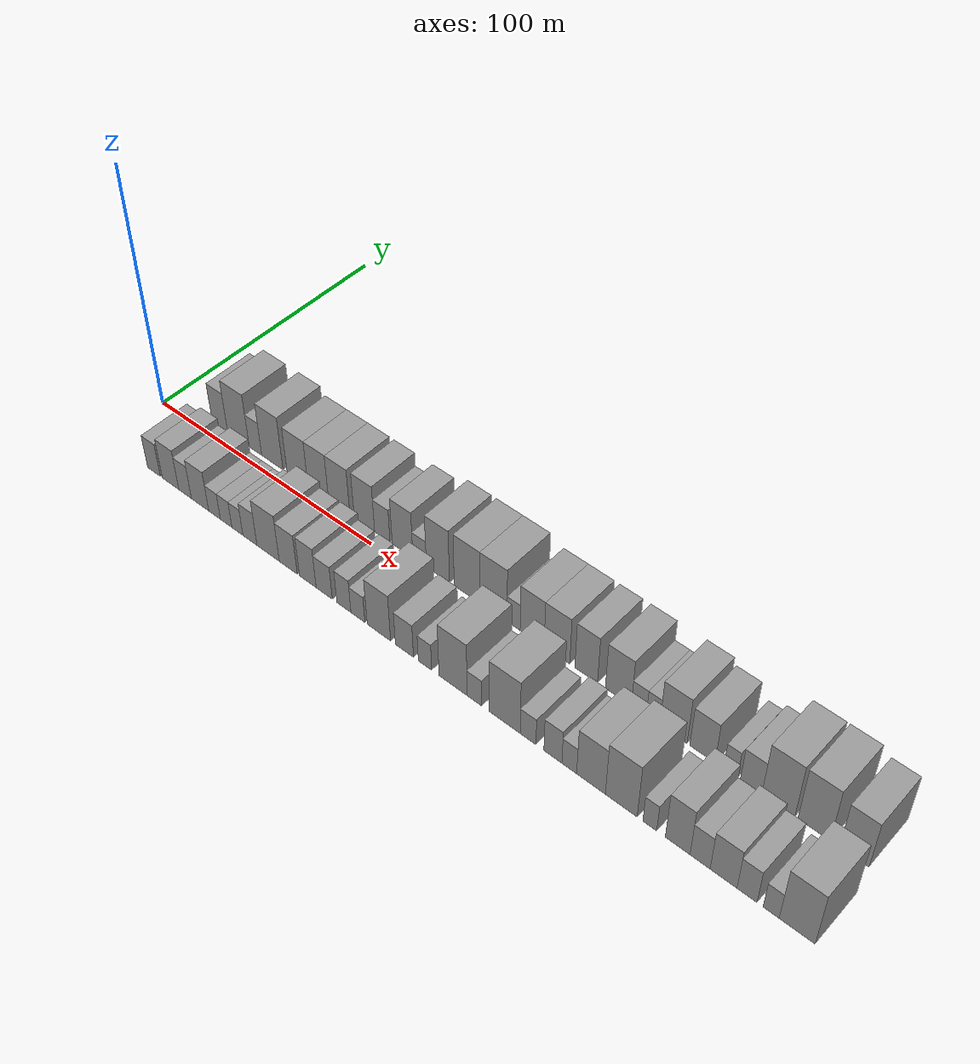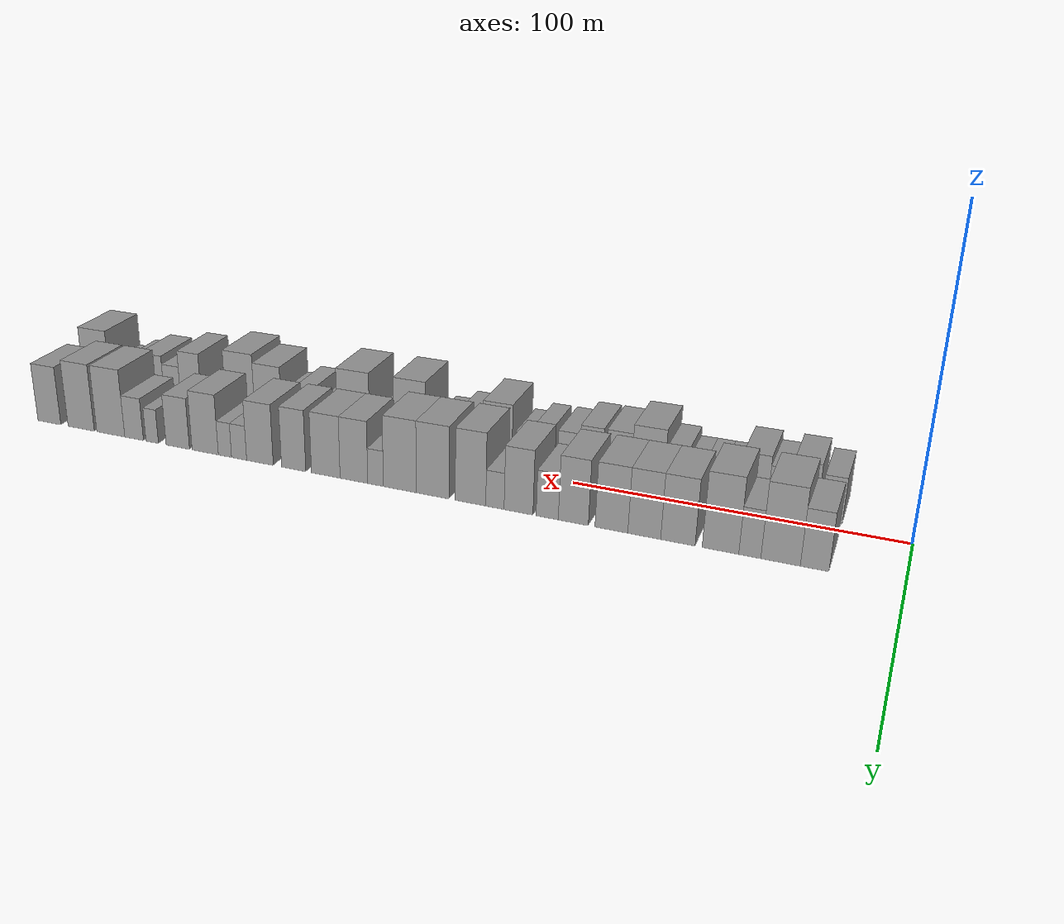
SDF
<sdf version="1.6">
 <world name="default">
  <scene>
   <sky><clouds><speed>12</speed></clouds></sky>
   <ambient>0.4 0.4 0.4 1</ambient>
   <background>0.7 0.7 0.7 1</background>
   <shadows>1</shadows>
  </scene>
  <gravity>0 0 -9.8066</gravity>
  <magnetic_field>6e-06 2.3e-05 -4.2e-05</magnetic_field>
  <physics default="0" name="default_physics" type="ode">
   <ode>
    <solver>
     <type>quick</type>
     <iters>10</iters>
     <sor>1.0</sor>
     <use_dynamic_moi_rescaling>0</use_dynamic_moi_rescaling>
    </solver>
    <constraints>
     <cfm>0</cfm>
     <erp>0.2</erp>
     <contact_max_correcting_vel>100</contact_max_correcting_vel>
     <contact_surface_layer>0.001</contact_surface_layer>
    </constraints>
   </ode>
   <max_step_size>0.004</max_step_size>
   <real_time_factor>1</real_time_factor>
   <real_time_update_rate>250</real_time_update_rate>
  </physics>
  <light name="sun" type="directional">
   <pose>0 0 10 0 0 0</pose>
   <diffuse>0.8 0.8 0.8 1</diffuse>
   <specular>0.2 0.2 0.2 1</specular>
   <attenuation>
    <range>1000</range>
    <constant>0.9</constant>
    <linear>0.01</linear>
    <quadratic>0.001</quadratic>
   </attenuation>
   <direction>-0.5 0.1 -0.9</direction>
  </light>
  <model name="building_1">
   <static>1</static>
   <pose>23.8413 14.5000 0 0.000000 0.000000 1.570796</pose>
   <link name="link">
    <pose>0 0 9.00 0 0 0</pose>
    <collision name="collision"><geometry><box><size>20.0000 7.6826 18.0000</size></box></geometry></collision>
    <visual name="visual">
     <cast_shadows>0</cast_shadows>
     <geometry><box><size>20.0000 7.6826 18.0000</size></box></geometry>
     <material>
      <script>
       <uri>model://grey_wall/materials/scripts</uri>
       <uri>model://grey_wall/materials/textures</uri>
       <name>vrc/grey_wall</name>
      </script>
     </material>
    </visual>
   </link>
  </model>
  <model name="building_2">
   <static>1</static>
   <pose>33.0514 14.5000 0 0.000000 0.000000 1.570796</pose>
   <link name="link">
    <pose>0 0 12.00 0 0 0</pose>
    <collision name="collision"><geometry><box><size>20.0000 10.7376 24.0000</size></box></geometry></collision>
    <visual name="visual">
     <cast_shadows>0</cast_shadows>
     <geometry><box><size>20.0000 10.7376 24.0000</size></box></geometry>
     <material>
      <script>
       <uri>model://grey_wall/materials/scripts</uri>
       <uri>model://grey_wall/materials/textures</uri>
       <name>vrc/grey_wall</name>
      </script>
     </material>
    </visual>
   </link>
  </model>
  <model name="building_3">
   <static>1</static>
   <pose>41.4664 14.5000 0 0.000000 0.000000 1.570796</pose>
   <link name="link">
    <pose>0 0 7.50 0 0 0</pose>
    <collision name="collision"><geometry><box><size>20.0000 6.0926 15.0000</size></box></geometry></collision>
    <visual name="visual">
     <cast_shadows>0</cast_shadows>
     <geometry><box><size>20.0000 6.0926 15.0000</size></box></geometry>
     <material>
      <script>
       <uri>model://grey_wall/materials/scripts</uri>
       <uri>model://grey_wall/materials/textures</uri>
       <name>vrc/grey_wall</name>
      </script>
     </material>
    </visual>
   </link>
  </model>
  <model name="building_4">
   <static>1</static>
   <pose>49.6495 14.5000 0 0.000000 0.000000 1.570796</pose>
   <link name="link">
    <pose>0 0 12.00 0 0 0</pose>
    <collision name="collision"><geometry><box><size>20.0000 10.2735 24.0000</size></box></geometry></collision>
    <visual name="visual">
     <cast_shadows>0</cast_shadows>
     <geometry><box><size>20.0000 10.2735 24.0000</size></box></geometry>
     <material>
      <script>
       <uri>model://grey_wall/materials/scripts</uri>
       <uri>model://grey_wall/materials/textures</uri>
       <name>vrc/grey_wall</name>
      </script>
     </material>
    </visual>
   </link>
  </model>
  <model name="building_5">
   <static>1</static>
   <pose>61.7389 14.5000 0 0.000000 0.000000 1.570796</pose>
   <link name="link">
    <pose>0 0 10.50 0 0 0</pose>
    <collision name="collision"><geometry><box><size>20.0000 9.9054 21.0000</size></box></geometry></collision>
    <visual name="visual">
     <cast_shadows>0</cast_shadows>
     <geometry><box><size>20.0000 9.9054 21.0000</size></box></geometry>
     <material>
      <script>
       <uri>model://grey_wall/materials/scripts</uri>
       <uri>model://grey_wall/materials/textures</uri>
       <name>vrc/grey_wall</name>
      </script>
     </material>
    </visual>
   </link>
  </model>
  <model name="building_6">
   <static>1</static>
   <pose>71.4987 14.5000 0 0.000000 0.000000 1.570796</pose>
   <link name="link">
    <pose>0 0 10.50 0 0 0</pose>
    <collision name="collision"><geometry><box><size>20.0000 9.6142 21.0000</size></box></geometry></collision>
    <visual name="visual">
     <cast_shadows>0</cast_shadows>
     <geometry><box><size>20.0000 9.6142 21.0000</size></box></geometry>
     <material>
      <script>
       <uri>model://grey_wall/materials/scripts</uri>
       <uri>model://grey_wall/materials/textures</uri>
       <name>vrc/grey_wall</name>
      </script>
     </material>
    </visual>
   </link>
  </model>
  <model name="building_7">
   <static>1</static>
   <pose>81.1928 14.5000 0 0.000000 0.000000 1.570796</pose>
   <link name="link">
    <pose>0 0 10.50 0 0 0</pose>
    <collision name="collision"><geometry><box><size>20.0000 9.7740 21.0000</size></box></geometry></collision>
    <visual name="visual">
     <cast_shadows>0</cast_shadows>
     <geometry><box><size>20.0000 9.7740 21.0000</size></box></geometry>
     <material>
      <script>
       <uri>model://grey_wall/materials/scripts</uri>
       <uri>model://grey_wall/materials/textures</uri>
       <name>vrc/grey_wall</name>
      </script>
     </material>
    </visual>
   </link>
  </model>
  <model name="building_8">
   <static>1</static>
   <pose>92.6519 14.5000 0 0.000000 0.000000 1.570796</pose>
   <link name="link">
    <pose>0 0 10.50 0 0 0</pose>
    <collision name="collision"><geometry><box><size>20.0000 9.1441 21.0000</size></box></geometry></collision>
    <visual name="visual">
     <cast_shadows>0</cast_shadows>
     <geometry><box><size>20.0000 9.1441 21.0000</size></box></geometry>
     <material>
      <script>
       <uri>model://grey_wall/materials/scripts</uri>
       <uri>model://grey_wall/materials/textures</uri>
       <name>vrc/grey_wall</name>
      </script>
     </material>
    </visual>
   </link>
  </model>
  <model name="building_9">
   <static>1</static>
   <pose>100.6380 14.5000 0 0.000000 0.000000 1.570796</pose>
   <link name="link">
    <pose>0 0 7.50 0 0 0</pose>
    <collision name="collision"><geometry><box><size>20.0000 6.8281 15.0000</size></box></geometry></collision>
    <visual name="visual">
     <cast_shadows>0</cast_shadows>
     <geometry><box><size>20.0000 6.8281 15.0000</size></box></geometry>
     <material>
      <script>
       <uri>model://grey_wall/materials/scripts</uri>
       <uri>model://grey_wall/materials/textures</uri>
       <name>vrc/grey_wall</name>
      </script>
     </material>
    </visual>
   </link>
  </model>
  <model name="building_10">
   <static>1</static>
   <pose>109.5795 14.5000 0 0.000000 0.000000 1.570796</pose>
   <link name="link">
    <pose>0 0 10.50 0 0 0</pose>
    <collision name="collision"><geometry><box><size>20.0000 9.0549 21.0000</size></box></geometry></collision>
    <visual name="visual">
     <cast_shadows>0</cast_shadows>
     <geometry><box><size>20.0000 9.0549 21.0000</size></box></geometry>
     <material>
      <script>
       <uri>model://grey_wall/materials/scripts</uri>
       <uri>model://grey_wall/materials/textures</uri>
       <name>vrc/grey_wall</name>
      </script>
     </material>
    </visual>
   </link>
  </model>
  <model name="building_11">
   <static>1</static>
   <pose>117.0202 14.5000 0 0.000000 0.000000 1.570796</pose>
   <link name="link">
    <pose>0 0 6.00 0 0 0</pose>
    <collision name="collision"><geometry><box><size>20.0000 5.8266 12.0000</size></box></geometry></collision>
    <visual name="visual">
     <cast_shadows>0</cast_shadows>
     <geometry><box><size>20.0000 5.8266 12.0000</size></box></geometry>
     <material>
      <script>
       <uri>model://grey_wall/materials/scripts</uri>
       <uri>model://grey_wall/materials/textures</uri>
       <name>vrc/grey_wall</name>
      </script>
     </material>
    </visual>
   </link>
  </model>
  <model name="building_12">
   <static>1</static>
   <pose>124.8573 14.5000 0 0.000000 0.000000 1.570796</pose>
   <link name="link">
    <pose>0 0 12.00 0 0 0</pose>
    <collision name="collision"><geometry><box><size>20.0000 9.8475 24.0000</size></box></geometry></collision>
    <visual name="visual">
     <cast_shadows>0</cast_shadows>
     <geometry><box><size>20.0000 9.8475 24.0000</size></box></geometry>
     <material>
      <script>
       <uri>model://grey_wall/materials/scripts</uri>
       <uri>model://grey_wall/materials/textures</uri>
       <name>vrc/grey_wall</name>
      </script>
     </material>
    </visual>
   </link>
  </model>
  <model name="building_13">
   <static>1</static>
   <pose>137.1904 14.5000 0 0.000000 0.000000 1.570796</pose>
   <link name="link">
    <pose>0 0 12.00 0 0 0</pose>
    <collision name="collision"><geometry><box><size>20.0000 10.8187 24.0000</size></box></geometry></collision>
    <visual name="visual">
     <cast_shadows>0</cast_shadows>
     <geometry><box><size>20.0000 10.8187 24.0000</size></box></geometry>
     <material>
      <script>
       <uri>model://grey_wall/materials/scripts</uri>
       <uri>model://grey_wall/materials/textures</uri>
       <name>vrc/grey_wall</name>
      </script>
     </material>
    </visual>
   </link>
  </model>
  <model name="building_14">
   <static>1</static>
   <pose>148.1119 14.5000 0 0.000000 0.000000 1.570796</pose>
   <link name="link">
    <pose>0 0 12.00 0 0 0</pose>
    <collision name="collision"><geometry><box><size>20.0000 11.0243 24.0000</size></box></geometry></collision>
    <visual name="visual">
     <cast_shadows>0</cast_shadows>
     <geometry><box><size>20.0000 11.0243 24.0000</size></box></geometry>
     <material>
      <script>
       <uri>model://grey_wall/materials/scripts</uri>
       <uri>model://grey_wall/materials/textures</uri>
       <name>vrc/grey_wall</name>
      </script>
     </material>
    </visual>
   </link>
  </model>
  <model name="building_15">
   <static>1</static>
   <pose>156.2772 14.5000 0 0.000000 0.000000 1.570796</pose>
   <link name="link">
    <pose>0 0 6.00 0 0 0</pose>
    <collision name="collision"><geometry><box><size>20.0000 5.3063 12.0000</size></box></geometry></collision>
    <visual name="visual">
     <cast_shadows>0</cast_shadows>
     <geometry><box><size>20.0000 5.3063 12.0000</size></box></geometry>
     <material>
      <script>
       <uri>model://grey_wall/materials/scripts</uri>
       <uri>model://grey_wall/materials/textures</uri>
       <name>vrc/grey_wall</name>
      </script>
     </material>
    </visual>
   </link>
  </model>
  <model name="building_16">
   <static>1</static>
   <pose>163.7048 14.5000 0 0.000000 0.000000 1.570796</pose>
   <link name="link">
    <pose>0 0 10.50 0 0 0</pose>
    <collision name="collision"><geometry><box><size>20.0000 9.5489 21.0000</size></box></geometry></collision>
    <visual name="visual">
     <cast_shadows>0</cast_shadows>
     <geometry><box><size>20.0000 9.5489 21.0000</size></box></geometry>
     <material>
      <script>
       <uri>model://grey_wall/materials/scripts</uri>
       <uri>model://grey_wall/materials/textures</uri>
       <name>vrc/grey_wall</name>
      </script>
     </material>
    </visual>
   </link>
  </model>
  <model name="building_17">
   <static>1</static>
   <pose>173.4987 14.5000 0 0.000000 0.000000 1.570796</pose>
   <link name="link">
    <pose>0 0 10.50 0 0 0</pose>
    <collision name="collision"><geometry><box><size>20.0000 10.0389 21.0000</size></box></geometry></collision>
    <visual name="visual">
     <cast_shadows>0</cast_shadows>
     <geometry><box><size>20.0000 10.0389 21.0000</size></box></geometry>
     <material>
      <script>
       <uri>model://grey_wall/materials/scripts</uri>
       <uri>model://grey_wall/materials/textures</uri>
       <name>vrc/grey_wall</name>
      </script>
     </material>
    </visual>
   </link>
  </model>
  <model name="building_18">
   <static>1</static>
   <pose>184.8592 14.5000 0 0.000000 0.000000 1.570796</pose>
   <link name="link">
    <pose>0 0 10.50 0 0 0</pose>
    <collision name="collision"><geometry><box><size>20.0000 8.6819 21.0000</size></box></geometry></collision>
    <visual name="visual">
     <cast_shadows>0</cast_shadows>
     <geometry><box><size>20.0000 8.6819 21.0000</size></box></geometry>
     <material>
      <script>
       <uri>model://grey_wall/materials/scripts</uri>
       <uri>model://grey_wall/materials/textures</uri>
       <name>vrc/grey_wall</name>
      </script>
     </material>
    </visual>
   </link>
  </model>
  <model name="building_19">
   <static>1</static>
   <pose>197.0673 14.5000 0 0.000000 0.000000 1.570796</pose>
   <link name="link">
    <pose>0 0 10.50 0 0 0</pose>
    <collision name="collision"><geometry><box><size>20.0000 9.7342 21.0000</size></box></geometry></collision>
    <visual name="visual">
     <cast_shadows>0</cast_shadows>
     <geometry><box><size>20.0000 9.7342 21.0000</size></box></geometry>
     <material>
      <script>
       <uri>model://grey_wall/materials/scripts</uri>
       <uri>model://grey_wall/materials/textures</uri>
       <name>vrc/grey_wall</name>
      </script>
     </material>
    </visual>
   </link>
  </model>
  <model name="building_20">
   <static>1</static>
   <pose>204.7194 14.5000 0 0.000000 0.000000 1.570796</pose>
   <link name="link">
    <pose>0 0 6.00 0 0 0</pose>
    <collision name="collision"><geometry><box><size>20.0000 5.5701 12.0000</size></box></geometry></collision>
    <visual name="visual">
     <cast_shadows>0</cast_shadows>
     <geometry><box><size>20.0000 5.5701 12.0000</size></box></geometry>
     <material>
      <script>
       <uri>model://grey_wall/materials/scripts</uri>
       <uri>model://grey_wall/materials/textures</uri>
       <name>vrc/grey_wall</name>
      </script>
     </material>
    </visual>
   </link>
  </model>
  <model name="building_21">
   <static>1</static>
   <pose>209.9682 14.5000 0 0.000000 0.000000 1.570796</pose>
   <link name="link">
    <pose>0 0 6.00 0 0 0</pose>
    <collision name="collision"><geometry><box><size>20.0000 4.9277 12.0000</size></box></geometry></collision>
    <visual name="visual">
     <cast_shadows>0</cast_shadows>
     <geometry><box><size>20.0000 4.9277 12.0000</size></box></geometry>
     <material>
      <script>
       <uri>model://grey_wall/materials/scripts</uri>
       <uri>model://grey_wall/materials/textures</uri>
       <name>vrc/grey_wall</name>
      </script>
     </material>
    </visual>
   </link>
  </model>
  <model name="building_22">
   <static>1</static>
   <pose>217.3739 14.5000 0 0.000000 0.000000 1.570796</pose>
   <link name="link">
    <pose>0 0 10.50 0 0 0</pose>
    <collision name="collision"><geometry><box><size>20.0000 9.8837 21.0000</size></box></geometry></collision>
    <visual name="visual">
     <cast_shadows>0</cast_shadows>
     <geometry><box><size>20.0000 9.8837 21.0000</size></box></geometry>
     <material>
      <script>
       <uri>model://grey_wall/materials/scripts</uri>
       <uri>model://grey_wall/materials/textures</uri>
       <name>vrc/grey_wall</name>
      </script>
     </material>
    </visual>
   </link>
  </model>
  <model name="building_23">
   <static>1</static>
   <pose>227.8025 14.5000 0 0.000000 0.000000 1.570796</pose>
   <link name="link">
    <pose>0 0 9.00 0 0 0</pose>
    <collision name="collision"><geometry><box><size>20.0000 8.9735 18.0000</size></box></geometry></collision>
    <visual name="visual">
     <cast_shadows>0</cast_shadows>
     <geometry><box><size>20.0000 8.9735 18.0000</size></box></geometry>
     <material>
      <script>
       <uri>model://grey_wall/materials/scripts</uri>
       <uri>model://grey_wall/materials/textures</uri>
       <name>vrc/grey_wall</name>
      </script>
     </material>
    </visual>
   </link>
  </model>
  <model name="building_24">
   <static>1</static>
   <pose>237.7132 14.5000 0 0.000000 0.000000 1.570796</pose>
   <link name="link">
    <pose>0 0 6.00 0 0 0</pose>
    <collision name="collision"><geometry><box><size>20.0000 4.8478 12.0000</size></box></geometry></collision>
    <visual name="visual">
     <cast_shadows>0</cast_shadows>
     <geometry><box><size>20.0000 4.8478 12.0000</size></box></geometry>
     <material>
      <script>
       <uri>model://grey_wall/materials/scripts</uri>
       <uri>model://grey_wall/materials/textures</uri>
       <name>vrc/grey_wall</name>
      </script>
     </material>
    </visual>
   </link>
  </model>
  <model name="building_25">
   <static>1</static>
   <pose>244.8207 14.5000 0 0.000000 0.000000 1.570796</pose>
   <link name="link">
    <pose>0 0 7.50 0 0 0</pose>
    <collision name="collision"><geometry><box><size>20.0000 7.3672 15.0000</size></box></geometry></collision>
    <visual name="visual">
     <cast_shadows>0</cast_shadows>
     <geometry><box><size>20.0000 7.3672 15.0000</size></box></geometry>
     <material>
      <script>
       <uri>model://grey_wall/materials/scripts</uri>
       <uri>model://grey_wall/materials/textures</uri>
       <name>vrc/grey_wall</name>
      </script>
     </material>
    </visual>
   </link>
  </model>
  <model name="building_26">
   <static>1</static>
   <pose>254.1062 14.5000 0 0.000000 0.000000 1.570796</pose>
   <link name="link">
    <pose>0 0 12.00 0 0 0</pose>
    <collision name="collision"><geometry><box><size>20.0000 11.2037 24.0000</size></box></geometry></collision>
    <visual name="visual">
     <cast_shadows>0</cast_shadows>
     <geometry><box><size>20.0000 11.2037 24.0000</size></box></geometry>
     <material>
      <script>
       <uri>model://grey_wall/materials/scripts</uri>
       <uri>model://grey_wall/materials/textures</uri>
       <name>vrc/grey_wall</name>
      </script>
     </material>
    </visual>
   </link>
  </model>
  <model name="building_27">
   <static>1</static>
   <pose>266.0632 14.5000 0 0.000000 0.000000 1.570796</pose>
   <link name="link">
    <pose>0 0 12.00 0 0 0</pose>
    <collision name="collision"><geometry><box><size>20.0000 10.7104 24.0000</size></box></geometry></collision>
    <visual name="visual">
     <cast_shadows>0</cast_shadows>
     <geometry><box><size>20.0000 10.7104 24.0000</size></box></geometry>
     <material>
      <script>
       <uri>model://grey_wall/materials/scripts</uri>
       <uri>model://grey_wall/materials/textures</uri>
       <name>vrc/grey_wall</name>
      </script>
     </material>
    </visual>
   </link>
  </model>
  <model name="building_28">
   <static>1</static>
   <pose>279.1710 14.5000 0 0.000000 0.000000 1.570796</pose>
   <link name="link">
    <pose>0 0 10.50 0 0 0</pose>
    <collision name="collision"><geometry><box><size>20.0000 9.5052 21.0000</size></box></geometry></collision>
    <visual name="visual">
     <cast_shadows>0</cast_shadows>
     <geometry><box><size>20.0000 9.5052 21.0000</size></box></geometry>
     <material>
      <script>
       <uri>model://grey_wall/materials/scripts</uri>
       <uri>model://grey_wall/materials/textures</uri>
       <name>vrc/grey_wall</name>
      </script>
     </material>
    </visual>
   </link>
  </model>
  <model name="building_29">
   <static>1</static>
   <pose>23.1900 -14.5000 0 0.000000 0.000000 1.570796</pose>
   <link name="link">
    <pose>0 0 7.50 0 0 0</pose>
    <collision name="collision"><geometry><box><size>20.0000 6.3801 15.0000</size></box></geometry></collision>
    <visual name="visual">
     <cast_shadows>0</cast_shadows>
     <geometry><box><size>20.0000 6.3801 15.0000</size></box></geometry>
     <material>
      <script>
       <uri>model://grey_wall/materials/scripts</uri>
       <uri>model://grey_wall/materials/textures</uri>
       <name>vrc/grey_wall</name>
      </script>
     </material>
    </visual>
   </link>
  </model>
  <model name="building_30">
   <static>1</static>
   <pose>31.4449 -14.5000 0 0.000000 0.000000 1.570796</pose>
   <link name="link">
    <pose>0 0 9.00 0 0 0</pose>
    <collision name="collision"><geometry><box><size>20.0000 8.1297 18.0000</size></box></geometry></collision>
    <visual name="visual">
     <cast_shadows>0</cast_shadows>
     <geometry><box><size>20.0000 8.1297 18.0000</size></box></geometry>
     <material>
      <script>
       <uri>model://grey_wall/materials/scripts</uri>
       <uri>model://grey_wall/materials/textures</uri>
       <name>vrc/grey_wall</name>
      </script>
     </material>
    </visual>
   </link>
  </model>
  <model name="building_31">
   <static>1</static>
   <pose>38.6423 -14.5000 0 0.000000 0.000000 1.570796</pose>
   <link name="link">
    <pose>0 0 7.50 0 0 0</pose>
    <collision name="collision"><geometry><box><size>20.0000 6.2650 15.0000</size></box></geometry></collision>
    <visual name="visual">
     <cast_shadows>0</cast_shadows>
     <geometry><box><size>20.0000 6.2650 15.0000</size></box></geometry>
     <material>
      <script>
       <uri>model://grey_wall/materials/scripts</uri>
       <uri>model://grey_wall/materials/textures</uri>
       <name>vrc/grey_wall</name>
      </script>
     </material>
    </visual>
   </link>
  </model>
  <model name="building_32">
   <static>1</static>
   <pose>45.9681 -14.5000 0 0.000000 0.000000 1.570796</pose>
   <link name="link">
    <pose>0 0 9.00 0 0 0</pose>
    <collision name="collision"><geometry><box><size>20.0000 8.3867 18.0000</size></box></geometry></collision>
    <visual name="visual">
     <cast_shadows>0</cast_shadows>
     <geometry><box><size>20.0000 8.3867 18.0000</size></box></geometry>
     <material>
      <script>
       <uri>model://grey_wall/materials/scripts</uri>
       <uri>model://grey_wall/materials/textures</uri>
       <name>vrc/grey_wall</name>
      </script>
     </material>
    </visual>
   </link>
  </model>
  <model name="building_33">
   <static>1</static>
   <pose>52.9565 -14.5000 0 0.000000 0.000000 1.570796</pose>
   <link name="link">
    <pose>0 0 6.00 0 0 0</pose>
    <collision name="collision"><geometry><box><size>20.0000 5.5900 12.0000</size></box></geometry></collision>
    <visual name="visual">
     <cast_shadows>0</cast_shadows>
     <geometry><box><size>20.0000 5.5900 12.0000</size></box></geometry>
     <material>
      <script>
       <uri>model://grey_wall/materials/scripts</uri>
       <uri>model://grey_wall/materials/textures</uri>
       <name>vrc/grey_wall</name>
      </script>
     </material>
    </visual>
   </link>
  </model>
  <model name="building_34">
   <static>1</static>
   <pose>58.4910 -14.5000 0 0.000000 0.000000 1.570796</pose>
   <link name="link">
    <pose>0 0 6.00 0 0 0</pose>
    <collision name="collision"><geometry><box><size>20.0000 5.4790 12.0000</size></box></geometry></collision>
    <visual name="visual">
     <cast_shadows>0</cast_shadows>
     <geometry><box><size>20.0000 5.4790 12.0000</size></box></geometry>
     <material>
      <script>
       <uri>model://grey_wall/materials/scripts</uri>
       <uri>model://grey_wall/materials/textures</uri>
       <name>vrc/grey_wall</name>
      </script>
     </material>
    </visual>
   </link>
  </model>
  <model name="building_35">
   <static>1</static>
   <pose>63.8195 -14.5000 0 0.000000 0.000000 1.570796</pose>
   <link name="link">
    <pose>0 0 6.00 0 0 0</pose>
    <collision name="collision"><geometry><box><size>20.0000 5.1780 12.0000</size></box></geometry></collision>
    <visual name="visual">
     <cast_shadows>0</cast_shadows>
     <geometry><box><size>20.0000 5.1780 12.0000</size></box></geometry>
     <material>
      <script>
       <uri>model://grey_wall/materials/scripts</uri>
       <uri>model://grey_wall/materials/textures</uri>
       <name>vrc/grey_wall</name>
      </script>
     </material>
    </visual>
   </link>
  </model>
  <model name="building_36">
   <static>1</static>
   <pose>69.6873 -14.5000 0 0.000000 0.000000 1.570796</pose>
   <link name="link">
    <pose>0 0 7.50 0 0 0</pose>
    <collision name="collision"><geometry><box><size>20.0000 6.5577 15.0000</size></box></geometry></collision>
    <visual name="visual">
     <cast_shadows>0</cast_shadows>
     <geometry><box><size>20.0000 6.5577 15.0000</size></box></geometry>
     <material>
      <script>
       <uri>model://grey_wall/materials/scripts</uri>
       <uri>model://grey_wall/materials/textures</uri>
       <name>vrc/grey_wall</name>
      </script>
     </material>
    </visual>
   </link>
  </model>
  <model name="building_37">
   <static>1</static>
   <pose>78.0988 -14.5000 0 0.000000 0.000000 1.570796</pose>
   <link name="link">
    <pose>0 0 10.50 0 0 0</pose>
    <collision name="collision"><geometry><box><size>20.0000 10.2654 21.0000</size></box></geometry></collision>
    <visual name="visual">
     <cast_shadows>0</cast_shadows>
     <geometry><box><size>20.0000 10.2654 21.0000</size></box></geometry>
     <material>
      <script>
       <uri>model://grey_wall/materials/scripts</uri>
       <uri>model://grey_wall/materials/textures</uri>
       <name>vrc/grey_wall</name>
      </script>
     </material>
    </visual>
   </link>
  </model>
  <model name="building_38">
   <static>1</static>
   <pose>87.3154 -14.5000 0 0.000000 0.000000 1.570796</pose>
   <link name="link">
    <pose>0 0 9.00 0 0 0</pose>
    <collision name="collision"><geometry><box><size>20.0000 8.1679 18.0000</size></box></geometry></collision>
    <visual name="visual">
     <cast_shadows>0</cast_shadows>
     <geometry><box><size>20.0000 8.1679 18.0000</size></box></geometry>
     <material>
      <script>
       <uri>model://grey_wall/materials/scripts</uri>
       <uri>model://grey_wall/materials/textures</uri>
       <name>vrc/grey_wall</name>
      </script>
     </material>
    </visual>
   </link>
  </model>
  <model name="building_39">
   <static>1</static>
   <pose>96.1027 -14.5000 0 0.000000 0.000000 1.570796</pose>
   <link name="link">
    <pose>0 0 9.00 0 0 0</pose>
    <collision name="collision"><geometry><box><size>20.0000 7.4067 18.0000</size></box></geometry></collision>
    <visual name="visual">
     <cast_shadows>0</cast_shadows>
     <geometry><box><size>20.0000 7.4067 18.0000</size></box></geometry>
     <material>
      <script>
       <uri>model://grey_wall/materials/scripts</uri>
       <uri>model://grey_wall/materials/textures</uri>
       <name>vrc/grey_wall</name>
      </script>
     </material>
    </visual>
   </link>
  </model>
  <model name="building_40">
   <static>1</static>
   <pose>103.3712 -14.5000 0 0.000000 0.000000 1.570796</pose>
   <link name="link">
    <pose>0 0 7.50 0 0 0</pose>
    <collision name="collision"><geometry><box><size>20.0000 7.1304 15.0000</size></box></geometry></collision>
    <visual name="visual">
     <cast_shadows>0</cast_shadows>
     <geometry><box><size>20.0000 7.1304 15.0000</size></box></geometry>
     <material>
      <script>
       <uri>model://grey_wall/materials/scripts</uri>
       <uri>model://grey_wall/materials/textures</uri>
       <name>vrc/grey_wall</name>
      </script>
     </material>
    </visual>
   </link>
  </model>
  <model name="building_41">
   <static>1</static>
   <pose>111.9947 -14.5000 0 0.000000 0.000000 1.570796</pose>
   <link name="link">
    <pose>0 0 7.50 0 0 0</pose>
    <collision name="collision"><geometry><box><size>20.0000 6.1165 15.0000</size></box></geometry></collision>
    <visual name="visual">
     <cast_shadows>0</cast_shadows>
     <geometry><box><size>20.0000 6.1165 15.0000</size></box></geometry>
     <material>
      <script>
       <uri>model://grey_wall/materials/scripts</uri>
       <uri>model://grey_wall/materials/textures</uri>
       <name>vrc/grey_wall</name>
      </script>
     </material>
    </visual>
   </link>
  </model>
  <model name="building_42">
   <static>1</static>
   <pose>118.0418 -14.5000 0 0.000000 0.000000 1.570796</pose>
   <link name="link">
    <pose>0 0 6.00 0 0 0</pose>
    <collision name="collision"><geometry><box><size>20.0000 5.9778 12.0000</size></box></geometry></collision>
    <visual name="visual">
     <cast_shadows>0</cast_shadows>
     <geometry><box><size>20.0000 5.9778 12.0000</size></box></geometry>
     <material>
      <script>
       <uri>model://grey_wall/materials/scripts</uri>
       <uri>model://grey_wall/materials/textures</uri>
       <name>vrc/grey_wall</name>
      </script>
     </material>
    </visual>
   </link>
  </model>
  <model name="building_43">
   <static>1</static>
   <pose>126.9660 -14.5000 0 0.000000 0.000000 1.570796</pose>
   <link name="link">
    <pose>0 0 10.50 0 0 0</pose>
    <collision name="collision"><geometry><box><size>20.0000 9.8705 21.0000</size></box></geometry></collision>
    <visual name="visual">
     <cast_shadows>0</cast_shadows>
     <geometry><box><size>20.0000 9.8705 21.0000</size></box></geometry>
     <material>
      <script>
       <uri>model://grey_wall/materials/scripts</uri>
       <uri>model://grey_wall/materials/textures</uri>
       <name>vrc/grey_wall</name>
      </script>
     </material>
    </visual>
   </link>
  </model>
  <model name="building_44">
   <static>1</static>
   <pose>137.6496 -14.5000 0 0.000000 0.000000 1.570796</pose>
   <link name="link">
    <pose>0 0 7.50 0 0 0</pose>
    <collision name="collision"><geometry><box><size>20.0000 7.4968 15.0000</size></box></geometry></collision>
    <visual name="visual">
     <cast_shadows>0</cast_shadows>
     <geometry><box><size>20.0000 7.4968 15.0000</size></box></geometry>
     <material>
      <script>
       <uri>model://grey_wall/materials/scripts</uri>
       <uri>model://grey_wall/materials/textures</uri>
       <name>vrc/grey_wall</name>
      </script>
     </material>
    </visual>
   </link>
  </model>
  <model name="building_45">
   <static>1</static>
   <pose>146.1252 -14.5000 0 0.000000 0.000000 1.570796</pose>
   <link name="link">
    <pose>0 0 6.00 0 0 0</pose>
    <collision name="collision"><geometry><box><size>20.0000 5.4544 12.0000</size></box></geometry></collision>
    <visual name="visual">
     <cast_shadows>0</cast_shadows>
     <geometry><box><size>20.0000 5.4544 12.0000</size></box></geometry>
     <material>
      <script>
       <uri>model://grey_wall/materials/scripts</uri>
       <uri>model://grey_wall/materials/textures</uri>
       <name>vrc/grey_wall</name>
      </script>
     </material>
    </visual>
   </link>
  </model>
  <model name="building_46">
   <static>1</static>
   <pose>157.4944 -14.5000 0 0.000000 0.000000 1.570796</pose>
   <link name="link">
    <pose>0 0 12.00 0 0 0</pose>
    <collision name="collision"><geometry><box><size>20.0000 11.2840 24.0000</size></box></geometry></collision>
    <visual name="visual">
     <cast_shadows>0</cast_shadows>
     <geometry><box><size>20.0000 11.2840 24.0000</size></box></geometry>
     <material>
      <script>
       <uri>model://grey_wall/materials/scripts</uri>
       <uri>model://grey_wall/materials/textures</uri>
       <name>vrc/grey_wall</name>
      </script>
     </material>
    </visual>
   </link>
  </model>
  <model name="building_47">
   <static>1</static>
   <pose>166.0079 -14.5000 0 0.000000 0.000000 1.570796</pose>
   <link name="link">
    <pose>0 0 6.00 0 0 0</pose>
    <collision name="collision"><geometry><box><size>20.0000 5.7429 12.0000</size></box></geometry></collision>
    <visual name="visual">
     <cast_shadows>0</cast_shadows>
     <geometry><box><size>20.0000 5.7429 12.0000</size></box></geometry>
     <material>
      <script>
       <uri>model://grey_wall/materials/scripts</uri>
       <uri>model://grey_wall/materials/textures</uri>
       <name>vrc/grey_wall</name>
      </script>
     </material>
    </visual>
   </link>
  </model>
  <model name="building_48">
   <static>1</static>
   <pose>177.8174 -14.5000 0 0.000000 0.000000 1.570796</pose>
   <link name="link">
    <pose>0 0 12.00 0 0 0</pose>
    <collision name="collision"><geometry><box><size>20.0000 11.8762 24.0000</size></box></geometry></collision>
    <visual name="visual">
     <cast_shadows>0</cast_shadows>
     <geometry><box><size>20.0000 11.8762 24.0000</size></box></geometry>
     <material>
      <script>
       <uri>model://grey_wall/materials/scripts</uri>
       <uri>model://grey_wall/materials/textures</uri>
       <name>vrc/grey_wall</name>
      </script>
     </material>
    </visual>
   </link>
  </model>
  <model name="building_49">
   <static>1</static>
   <pose>186.7386 -14.5000 0 0.000000 0.000000 1.570796</pose>
   <link name="link">
    <pose>0 0 6.00 0 0 0</pose>
    <collision name="collision"><geometry><box><size>20.0000 5.9663 12.0000</size></box></geometry></collision>
    <visual name="visual">
     <cast_shadows>0</cast_shadows>
     <geometry><box><size>20.0000 5.9663 12.0000</size></box></geometry>
     <material>
      <script>
       <uri>model://grey_wall/materials/scripts</uri>
       <uri>model://grey_wall/materials/textures</uri>
       <name>vrc/grey_wall</name>
      </script>
     </material>
    </visual>
   </link>
  </model>
  <model name="building_50">
   <static>1</static>
   <pose>196.0771 -14.5000 0 0.000000 0.000000 1.570796</pose>
   <link name="link">
    <pose>0 0 7.50 0 0 0</pose>
    <collision name="collision"><geometry><box><size>20.0000 6.7107 15.0000</size></box></geometry></collision>
    <visual name="visual">
     <cast_shadows>0</cast_shadows>
     <geometry><box><size>20.0000 6.7107 15.0000</size></box></geometry>
     <material>
      <script>
       <uri>model://grey_wall/materials/scripts</uri>
       <uri>model://grey_wall/materials/textures</uri>
       <name>vrc/grey_wall</name>
      </script>
     </material>
    </visual>
   </link>
  </model>
  <model name="building_51">
   <static>1</static>
   <pose>202.1511 -14.5000 0 0.000000 0.000000 1.570796</pose>
   <link name="link">
    <pose>0 0 6.00 0 0 0</pose>
    <collision name="collision"><geometry><box><size>20.0000 5.4374 12.0000</size></box></geometry></collision>
    <visual name="visual">
     <cast_shadows>0</cast_shadows>
     <geometry><box><size>20.0000 5.4374 12.0000</size></box></geometry>
     <material>
      <script>
       <uri>model://grey_wall/materials/scripts</uri>
       <uri>model://grey_wall/materials/textures</uri>
       <name>vrc/grey_wall</name>
      </script>
     </material>
    </visual>
   </link>
  </model>
  <model name="building_52">
   <static>1</static>
   <pose>210.0968 -14.5000 0 0.000000 0.000000 1.570796</pose>
   <link name="link">
    <pose>0 0 10.50 0 0 0</pose>
    <collision name="collision"><geometry><box><size>20.0000 10.4538 21.0000</size></box></geometry></collision>
    <visual name="visual">
     <cast_shadows>0</cast_shadows>
     <geometry><box><size>20.0000 10.4538 21.0000</size></box></geometry>
     <material>
      <script>
       <uri>model://grey_wall/materials/scripts</uri>
       <uri>model://grey_wall/materials/textures</uri>
       <name>vrc/grey_wall</name>
      </script>
     </material>
    </visual>
   </link>
  </model>
  <model name="building_53">
   <static>1</static>
   <pose>220.9941 -14.5000 0 0.000000 0.000000 1.570796</pose>
   <link name="link">
    <pose>0 0 12.00 0 0 0</pose>
    <collision name="collision"><geometry><box><size>20.0000 11.3409 24.0000</size></box></geometry></collision>
    <visual name="visual">
     <cast_shadows>0</cast_shadows>
     <geometry><box><size>20.0000 11.3409 24.0000</size></box></geometry>
     <material>
      <script>
       <uri>model://grey_wall/materials/scripts</uri>
       <uri>model://grey_wall/materials/textures</uri>
       <name>vrc/grey_wall</name>
      </script>
     </material>
    </visual>
   </link>
  </model>
  <model name="building_54">
   <static>1</static>
   <pose>231.0728 -14.5000 0 0.000000 0.000000 1.570796</pose>
   <link name="link">
    <pose>0 0 6.00 0 0 0</pose>
    <collision name="collision"><geometry><box><size>20.0000 4.8164 12.0000</size></box></geometry></collision>
    <visual name="visual">
     <cast_shadows>0</cast_shadows>
     <geometry><box><size>20.0000 4.8164 12.0000</size></box></geometry>
     <material>
      <script>
       <uri>model://grey_wall/materials/scripts</uri>
       <uri>model://grey_wall/materials/textures</uri>
       <name>vrc/grey_wall</name>
      </script>
     </material>
    </visual>
   </link>
  </model>
  <model name="building_55">
   <static>1</static>
   <pose>240.7075 -14.5000 0 0.000000 0.000000 1.570796</pose>
   <link name="link">
    <pose>0 0 10.50 0 0 0</pose>
    <collision name="collision"><geometry><box><size>20.0000 8.4530 21.0000</size></box></geometry></collision>
    <visual name="visual">
     <cast_shadows>0</cast_shadows>
     <geometry><box><size>20.0000 8.4530 21.0000</size></box></geometry>
     <material>
      <script>
       <uri>model://grey_wall/materials/scripts</uri>
       <uri>model://grey_wall/materials/textures</uri>
       <name>vrc/grey_wall</name>
      </script>
     </material>
    </visual>
   </link>
  </model>
  <model name="building_56">
   <static>1</static>
   <pose>248.3258 -14.5000 0 0.000000 0.000000 1.570796</pose>
   <link name="link">
    <pose>0 0 7.50 0 0 0</pose>
    <collision name="collision"><geometry><box><size>20.0000 6.7836 15.0000</size></box></geometry></collision>
    <visual name="visual">
     <cast_shadows>0</cast_shadows>
     <geometry><box><size>20.0000 6.7836 15.0000</size></box></geometry>
     <material>
      <script>
       <uri>model://grey_wall/materials/scripts</uri>
       <uri>model://grey_wall/materials/textures</uri>
       <name>vrc/grey_wall</name>
      </script>
     </material>
    </visual>
   </link>
  </model>
  <model name="building_57">
   <static>1</static>
   <pose>256.1953 -14.5000 0 0.000000 0.000000 1.570796</pose>
   <link name="link">
    <pose>0 0 9.00 0 0 0</pose>
    <collision name="collision"><geometry><box><size>20.0000 8.9555 18.0000</size></box></geometry></collision>
    <visual name="visual">
     <cast_shadows>0</cast_shadows>
     <geometry><box><size>20.0000 8.9555 18.0000</size></box></geometry>
     <material>
      <script>
       <uri>model://grey_wall/materials/scripts</uri>
       <uri>model://grey_wall/materials/textures</uri>
       <name>vrc/grey_wall</name>
      </script>
     </material>
    </visual>
   </link>
  </model>
  <model name="building_58">
   <static>1</static>
   <pose>263.9451 -14.5000 0 0.000000 0.000000 1.570796</pose>
   <link name="link">
    <pose>0 0 7.50 0 0 0</pose>
    <collision name="collision"><geometry><box><size>20.0000 6.5441 15.0000</size></box></geometry></collision>
    <visual name="visual">
     <cast_shadows>0</cast_shadows>
     <geometry><box><size>20.0000 6.5441 15.0000</size></box></geometry>
     <material>
      <script>
       <uri>model://grey_wall/materials/scripts</uri>
       <uri>model://grey_wall/materials/textures</uri>
       <name>vrc/grey_wall</name>
      </script>
     </material>
    </visual>
   </link>
  </model>
  <model name="building_59">
   <static>1</static>
   <pose>271.8021 -14.5000 0 0.000000 0.000000 1.570796</pose>
   <link name="link">
    <pose>0 0 6.00 0 0 0</pose>
    <collision name="collision"><geometry><box><size>20.0000 5.1699 12.0000</size></box></geometry></collision>
    <visual name="visual">
     <cast_shadows>0</cast_shadows>
     <geometry><box><size>20.0000 5.1699 12.0000</size></box></geometry>
     <material>
      <script>
       <uri>model://grey_wall/materials/scripts</uri>
       <uri>model://grey_wall/materials/textures</uri>
       <name>vrc/grey_wall</name>
      </script>
     </material>
    </visual>
   </link>
  </model>
  <model name="building_60">
   <static>1</static>
   <pose>280.0920 -14.5000 0 0.000000 0.000000 1.570796</pose>
   <link name="link">
    <pose>0 0 12.00 0 0 0</pose>
    <collision name="collision"><geometry><box><size>20.0000 11.4100 24.0000</size></box></geometry></collision>
    <visual name="visual">
     <cast_shadows>0</cast_shadows>
     <geometry><box><size>20.0000 11.4100 24.0000</size></box></geometry>
     <material>
      <script>
       <uri>model://grey_wall/materials/scripts</uri>
       <uri>model://grey_wall/materials/textures</uri>
       <name>vrc/grey_wall</name>
      </script>
     </material>
    </visual>
   </link>
  </model>
 </world>
</sdf>
